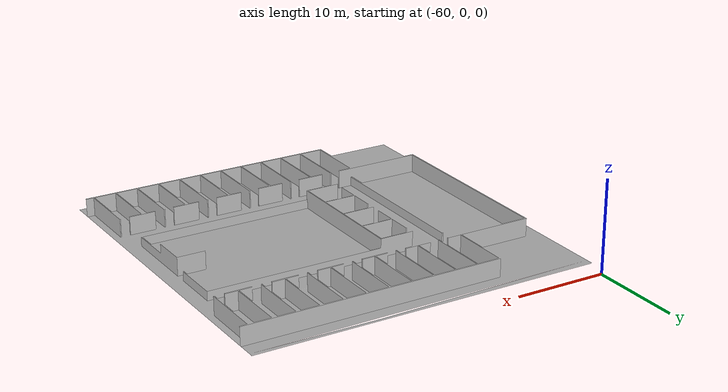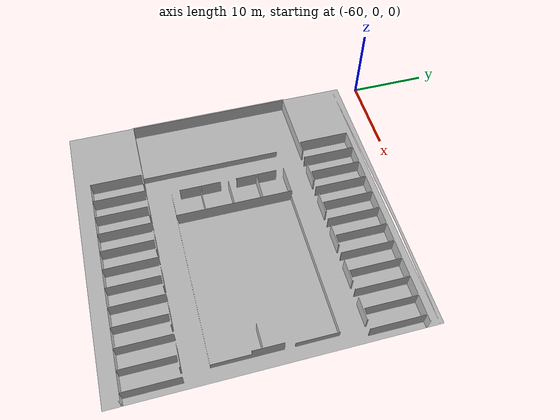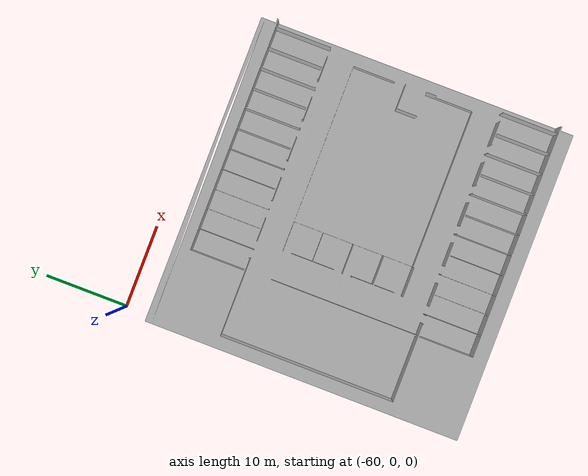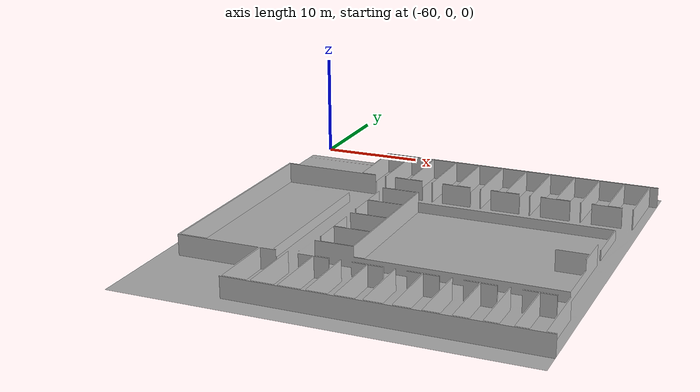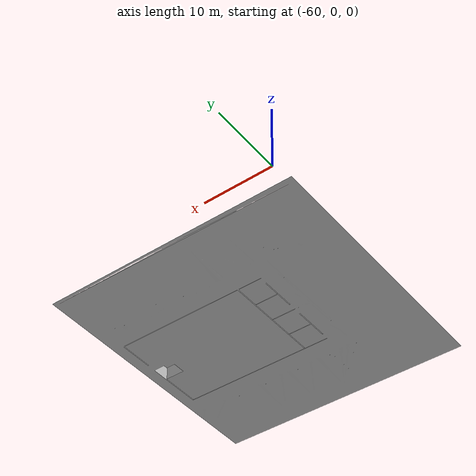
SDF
<?xml version="1.0" ?>
<sdf version="1.5">
  <model name="UnB Hospital">
    <static>true</static>
    <pose>-20 -20 0 0 0 0</pose>
    <link name="walls">
      <collision name="collision">
        <geometry>
          <mesh>
            <uri>model://hospital/hospital.dae</uri>
          </mesh>
        </geometry>
      </collision>
      <visual name="visual">
        <geometry>
          <mesh>
            <uri>model://hospital/hospital.dae</uri>
          </mesh>
        </geometry>
        <cast_shadows>false</cast_shadows>
      </visual>
    </link>
  </model>
</sdf>
